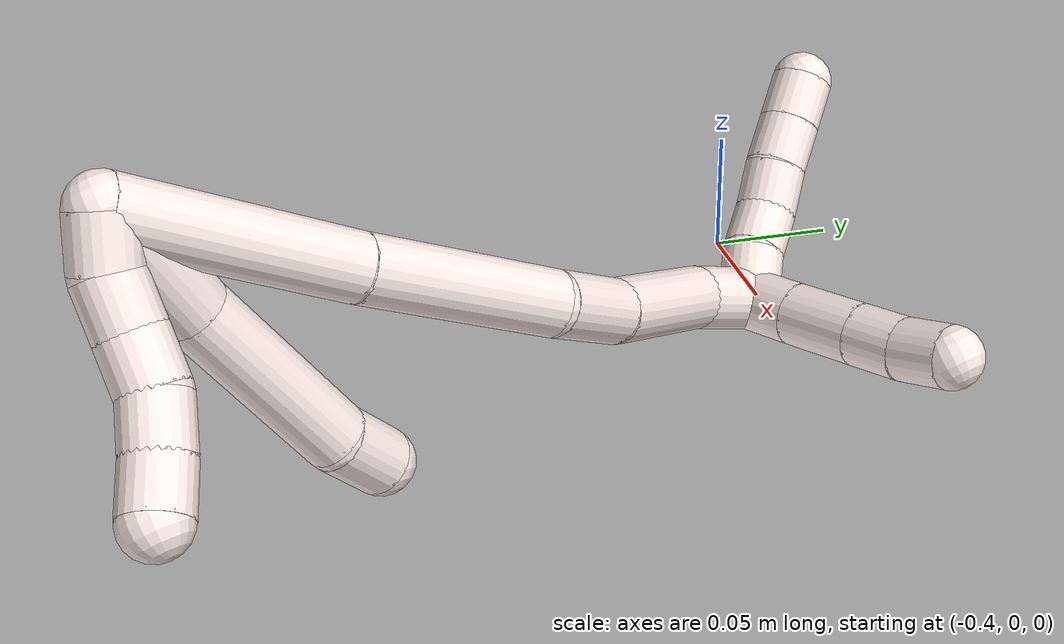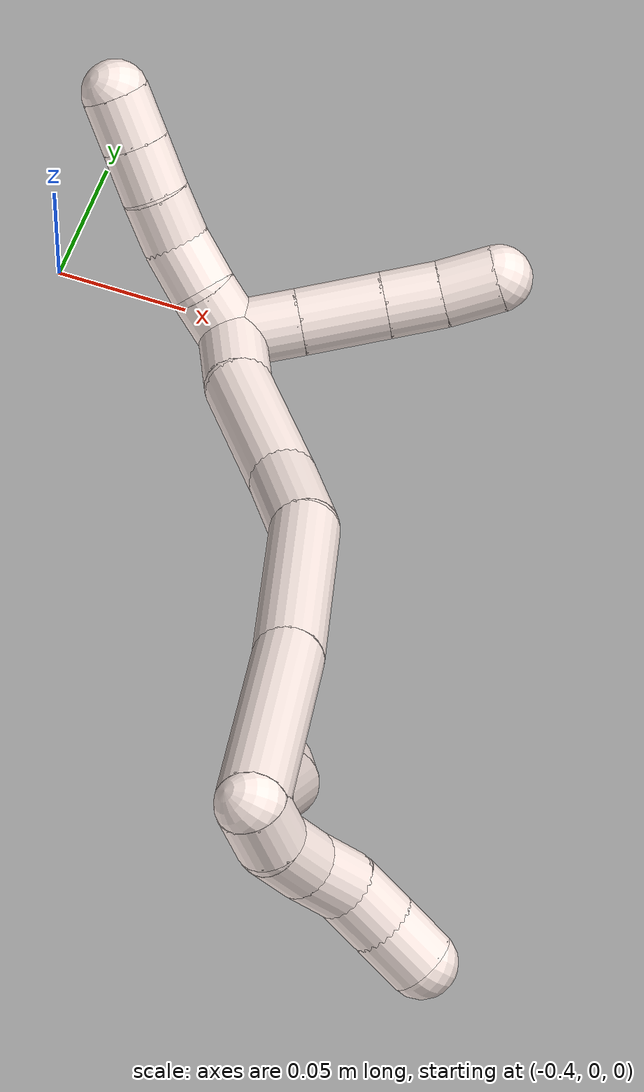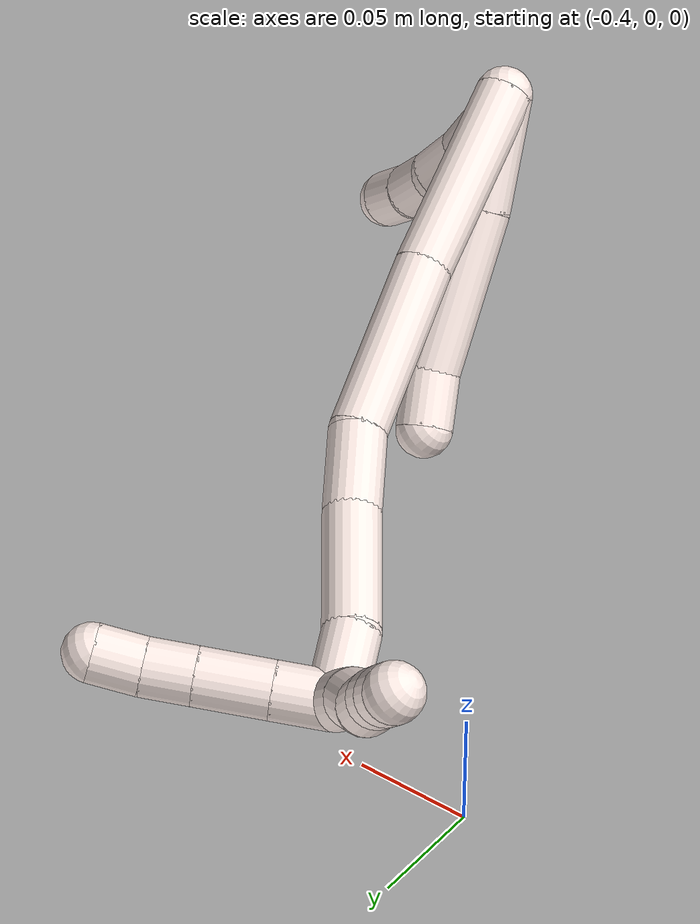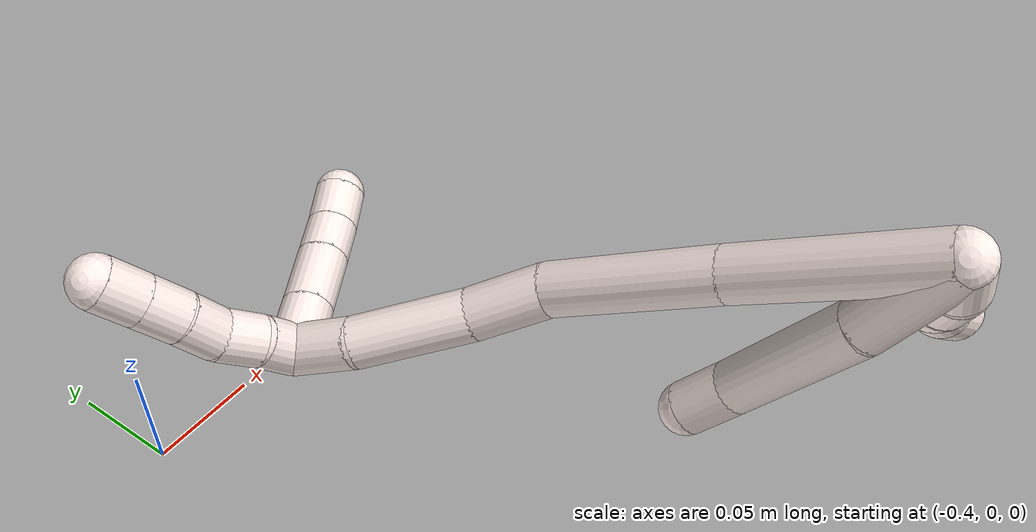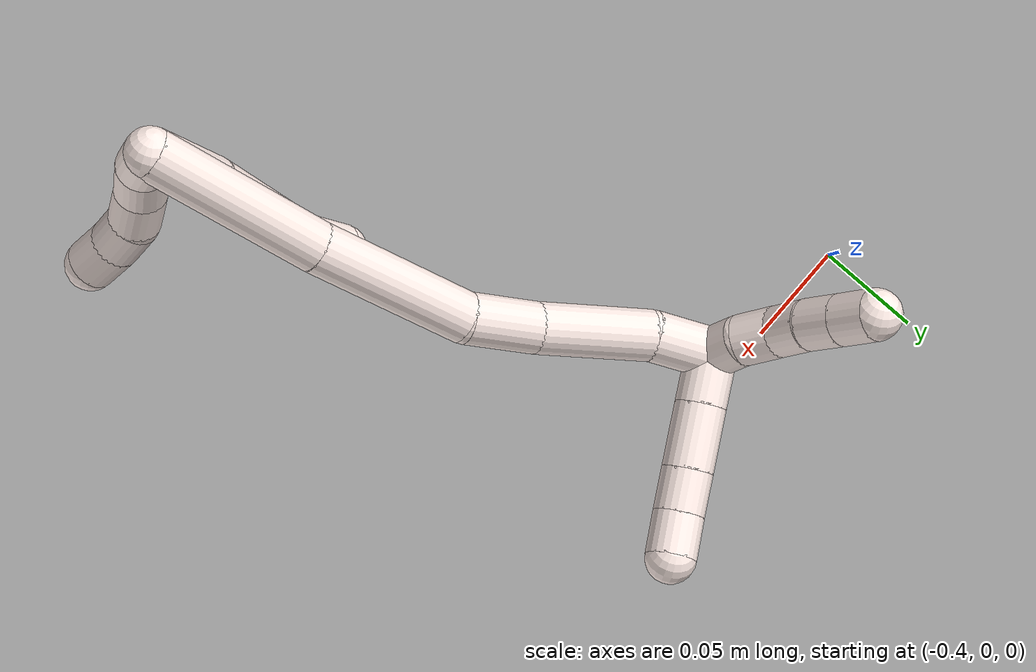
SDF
<sdf version="1.7">
 <world name="default">
  <model name="11">
   <static>0</static>
   <link name="11">
    <collision name="collision-cylinder-e_1_2_8">
     <pose>-0.018063 0.006832 -0.016185 -2.74216 -0.799315 2.24783</pose>
     <geometry><cylinder><radius>0.0125</radius><length>0.050394</length></cylinder></geometry>
     <surface>
      <friction><ode><mu>1.16</mu><mu2>1.16</mu2><slip1>0</slip1><slip2>0</slip2></ode></friction>
      <contact><ode><kp>1e+06</kp><kd>1</kd><max_vel>0</max_vel><min_depth>0.001</min_depth></ode></contact>
     </surface>
    </collision>
    <visual name="visual-cylinder-e_1_2_8">
     <pose>-0.018063 0.006832 -0.016185 -2.74216 -0.799315 2.24783</pose>
     <geometry><cylinder><radius>0.0125</radius><length>0.050394</length></cylinder></geometry>
     <material><ambient>1 0.933333 0.909804 1</ambient></material>
    </visual>
    <collision name="collision-cylinder-e_2_8_9">
     <pose>-0.059787 0.027061 -0.057349 -2.64931 -0.695553 1.9295</pose>
     <geometry><cylinder><radius>0.0125</radius><length>0.073847</length></cylinder></geometry>
     <surface>
      <friction><ode><mu>1.16</mu><mu2>1.16</mu2><slip1>0</slip1><slip2>0</slip2></ode></friction>
      <contact><ode><kp>1e+06</kp><kd>1</kd><max_vel>0</max_vel><min_depth>0.001</min_depth></ode></contact>
     </surface>
    </collision>
    <visual name="visual-cylinder-e_2_8_9">
     <pose>-0.059787 0.027061 -0.057349 -2.64931 -0.695553 1.9295</pose>
     <geometry><cylinder><radius>0.0125</radius><length>0.073847</length></cylinder></geometry>
     <material><ambient>1 0.933333 0.909804 1</ambient></material>
    </visual>
    <collision name="collision-cylinder-e_3_9_6">
     <pose>-0.093194 0.046467 -0.088229 -2.3471 -0.858205 1.65736</pose>
     <geometry><cylinder><radius>0.0125</radius><length>0.025759</length></cylinder></geometry>
     <surface>
      <friction><ode><mu>1.16</mu><mu2>1.16</mu2><slip1>0</slip1><slip2>0</slip2></ode></friction>
      <contact><ode><kp>1e+06</kp><kd>1</kd><max_vel>0</max_vel><min_depth>0.001</min_depth></ode></contact>
     </surface>
    </collision>
    <visual name="visual-cylinder-e_3_9_6">
     <pose>-0.093194 0.046467 -0.088229 -2.3471 -0.858205 1.65736</pose>
     <geometry><cylinder><radius>0.0125</radius><length>0.025759</length></cylinder></geometry>
     <material><ambient>1 0.933333 0.909804 1</ambient></material>
    </visual>
    <collision name="collision-cylinder-e_1_2_10">
     <pose>-0.003152 -0.00326 -0.008913 2.79092 -0.320622 -1.47964</pose>
     <geometry><cylinder><radius>0.0125</radius><length>0.02</length></cylinder></geometry>
     <surface>
      <friction><ode><mu>1.16</mu><mu2>1.16</mu2><slip1>0</slip1><slip2>0</slip2></ode></friction>
      <contact><ode><kp>1e+06</kp><kd>1</kd><max_vel>0</max_vel><min_depth>0.001</min_depth></ode></contact>
     </surface>
    </collision>
    <visual name="visual-cylinder-e_1_2_10">
     <pose>-0.003152 -0.00326 -0.008913 2.79092 -0.320622 -1.47964</pose>
     <geometry><cylinder><radius>0.0125</radius><length>0.02</length></cylinder></geometry>
     <material><ambient>1 0.933333 0.909804 1</ambient></material>
    </visual>
    <collision name="collision-cylinder-e_2_10_11">
     <pose>-0.008414 -0.006801 -0.027596 3.1129 -0.212701 -2.87439</pose>
     <geometry><cylinder><radius>0.0125</radius><length>0.02</length></cylinder></geometry>
     <surface>
      <friction><ode><mu>1.16</mu><mu2>1.16</mu2><slip1>0</slip1><slip2>0</slip2></ode></friction>
      <contact><ode><kp>1e+06</kp><kd>1</kd><max_vel>0</max_vel><min_depth>0.001</min_depth></ode></contact>
     </surface>
    </collision>
    <visual name="visual-cylinder-e_2_10_11">
     <pose>-0.008414 -0.006801 -0.027596 3.1129 -0.212701 -2.87439</pose>
     <geometry><cylinder><radius>0.0125</radius><length>0.02</length></cylinder></geometry>
     <material><ambient>1 0.933333 0.909804 1</ambient></material>
    </visual>
    <collision name="collision-cylinder-e_3_11_12">
     <pose>-0.010851 -0.007339 -0.047358 3.11585 -0.032594 -1.80462</pose>
     <geometry><cylinder><radius>0.0125</radius><length>0.02</length></cylinder></geometry>
     <surface>
      <friction><ode><mu>1.16</mu><mu2>1.16</mu2><slip1>0</slip1><slip2>0</slip2></ode></friction>
      <contact><ode><kp>1e+06</kp><kd>1</kd><max_vel>0</max_vel><min_depth>0.001</min_depth></ode></contact>
     </surface>
    </collision>
    <visual name="visual-cylinder-e_3_11_12">
     <pose>-0.010851 -0.007339 -0.047358 3.11585 -0.032594 -1.80462</pose>
     <geometry><cylinder><radius>0.0125</radius><length>0.02</length></cylinder></geometry>
     <material><ambient>1 0.933333 0.909804 1</ambient></material>
    </visual>
    <collision name="collision-cylinder-e_4_12_13">
     <pose>-0.010423 -0.010852 -0.066774 2.80892 0.075486 0.442467</pose>
     <geometry><cylinder><radius>0.0125</radius><length>0.02</length></cylinder></geometry>
     <surface>
      <friction><ode><mu>1.16</mu><mu2>1.16</mu2><slip1>0</slip1><slip2>0</slip2></ode></friction>
      <contact><ode><kp>1e+06</kp><kd>1</kd><max_vel>0</max_vel><min_depth>0.001</min_depth></ode></contact>
     </surface>
    </collision>
    <visual name="visual-cylinder-e_4_12_13">
     <pose>-0.010423 -0.010852 -0.066774 2.80892 0.075486 0.442467</pose>
     <geometry><cylinder><radius>0.0125</radius><length>0.02</length></cylinder></geometry>
     <material><ambient>1 0.933333 0.909804 1</ambient></material>
    </visual>
    <collision name="collision-cylinder-e_5_13_5">
     <pose>-0.007705 -0.018096 -0.085157 2.72279 0.19766 0.87309</pose>
     <geometry><cylinder><radius>0.0125</radius><length>0.02</length></cylinder></geometry>
     <surface>
      <friction><ode><mu>1.16</mu><mu2>1.16</mu2><slip1>0</slip1><slip2>0</slip2></ode></friction>
      <contact><ode><kp>1e+06</kp><kd>1</kd><max_vel>0</max_vel><min_depth>0.001</min_depth></ode></contact>
     </surface>
    </collision>
    <visual name="visual-cylinder-e_5_13_5">
     <pose>-0.007705 -0.018096 -0.085157 2.72279 0.19766 0.87309</pose>
     <geometry><cylinder><radius>0.0125</radius><length>0.02</length></cylinder></geometry>
     <material><ambient>1 0.933333 0.909804 1</ambient></material>
    </visual>
    <collision name="collision-cylinder-e_1_2_14">
     <pose>-0.022894 0.034118 -0.019372 -2.0872 -0.52821 0.869726</pose>
     <geometry><cylinder><radius>0.0125</radius><length>0.090851</length></cylinder></geometry>
     <surface>
      <friction><ode><mu>1.16</mu><mu2>1.16</mu2><slip1>0</slip1><slip2>0</slip2></ode></friction>
      <contact><ode><kp>1e+06</kp><kd>1</kd><max_vel>0</max_vel><min_depth>0.001</min_depth></ode></contact>
     </surface>
    </collision>
    <visual name="visual-cylinder-e_1_2_14">
     <pose>-0.022894 0.034118 -0.019372 -2.0872 -0.52821 0.869726</pose>
     <geometry><cylinder><radius>0.0125</radius><length>0.090851</length></cylinder></geometry>
     <material><ambient>1 0.933333 0.909804 1</ambient></material>
    </visual>
    <collision name="collision-cylinder-e_2_14_15">
     <pose>-0.067814 0.099132 -0.053968 -2.0286 -0.568963 0.878814</pose>
     <geometry><cylinder><radius>0.0125</radius><length>0.081766</length></cylinder></geometry>
     <surface>
      <friction><ode><mu>1.16</mu><mu2>1.16</mu2><slip1>0</slip1><slip2>0</slip2></ode></friction>
      <contact><ode><kp>1e+06</kp><kd>1</kd><max_vel>0</max_vel><min_depth>0.001</min_depth></ode></contact>
     </surface>
    </collision>
    <visual name="visual-cylinder-e_2_14_15">
     <pose>-0.067814 0.099132 -0.053968 -2.0286 -0.568963 0.878814</pose>
     <geometry><cylinder><radius>0.0125</radius><length>0.081766</length></cylinder></geometry>
     <material><ambient>1 0.933333 0.909804 1</ambient></material>
    </visual>
    <collision name="collision-cylinder-e_3_15_16">
     <pose>-0.103593 0.142104 -0.073061 -1.88094 -0.825901 1.0816</pose>
     <geometry><cylinder><radius>0.0125</radius><length>0.037415</length></cylinder></geometry>
     <surface>
      <friction><ode><mu>1.16</mu><mu2>1.16</mu2><slip1>0</slip1><slip2>0</slip2></ode></friction>
      <contact><ode><kp>1e+06</kp><kd>1</kd><max_vel>0</max_vel><min_depth>0.001</min_depth></ode></contact>
     </surface>
    </collision>
    <visual name="visual-cylinder-e_3_15_16">
     <pose>-0.103593 0.142104 -0.073061 -1.88094 -0.825901 1.0816</pose>
     <geometry><cylinder><radius>0.0125</radius><length>0.037415</length></cylinder></geometry>
     <material><ambient>1 0.933333 0.909804 1</ambient></material>
    </visual>
    <collision name="collision-cylinder-e_4_16_17">
     <pose>-0.137692 0.174435 -0.078277 -1.63712 -0.78657 0.834658</pose>
     <geometry><cylinder><radius>0.0125</radius><length>0.057481</length></cylinder></geometry>
     <surface>
      <friction><ode><mu>1.16</mu><mu2>1.16</mu2><slip1>0</slip1><slip2>0</slip2></ode></friction>
      <contact><ode><kp>1e+06</kp><kd>1</kd><max_vel>0</max_vel><min_depth>0.001</min_depth></ode></contact>
     </surface>
    </collision>
    <visual name="visual-cylinder-e_4_16_17">
     <pose>-0.137692 0.174435 -0.078277 -1.63712 -0.78657 0.834658</pose>
     <geometry><cylinder><radius>0.0125</radius><length>0.057481</length></cylinder></geometry>
     <material><ambient>1 0.933333 0.909804 1</ambient></material>
    </visual>
    <collision name="collision-cylinder-e_5_17_1">
     <pose>-0.167851 0.207163 -0.083081 -1.84128 -0.648617 0.832491</pose>
     <geometry><cylinder><radius>0.0125</radius><length>0.032487</length></cylinder></geometry>
     <surface>
      <friction><ode><mu>1.16</mu><mu2>1.16</mu2><slip1>0</slip1><slip2>0</slip2></ode></friction>
      <contact><ode><kp>1e+06</kp><kd>1</kd><max_vel>0</max_vel><min_depth>0.001</min_depth></ode></contact>
     </surface>
    </collision>
    <visual name="visual-cylinder-e_5_17_1">
     <pose>-0.167851 0.207163 -0.083081 -1.84128 -0.648617 0.832491</pose>
     <geometry><cylinder><radius>0.0125</radius><length>0.032487</length></cylinder></geometry>
     <material><ambient>1 0.933333 0.909804 1</ambient></material>
    </visual>
    <collision name="collision-cylinder-e_1_1_18">
     <pose>-0.17863 0.225046 -0.078184 -0.574457 -0.096832 0.028624</pose>
     <geometry><cylinder><radius>0.0125</radius><length>0.02</length></cylinder></geometry>
     <surface>
      <friction><ode><mu>1.16</mu><mu2>1.16</mu2><slip1>0</slip1><slip2>0</slip2></ode></friction>
      <contact><ode><kp>1e+06</kp><kd>1</kd><max_vel>0</max_vel><min_depth>0.001</min_depth></ode></contact>
     </surface>
    </collision>
    <visual name="visual-cylinder-e_1_1_18">
     <pose>-0.17863 0.225046 -0.078184 -0.574457 -0.096832 0.028624</pose>
     <geometry><cylinder><radius>0.0125</radius><length>0.02</length></cylinder></geometry>
     <material><ambient>1 0.933333 0.909804 1</ambient></material>
    </visual>
    <collision name="collision-cylinder-e_2_18_19">
     <pose>-0.182138 0.237265 -0.062961 -0.781295 -0.25686 0.106263</pose>
     <geometry><cylinder><radius>0.0125</radius><length>0.02</length></cylinder></geometry>
     <surface>
      <friction><ode><mu>1.16</mu><mu2>1.16</mu2><slip1>0</slip1><slip2>0</slip2></ode></friction>
      <contact><ode><kp>1e+06</kp><kd>1</kd><max_vel>0</max_vel><min_depth>0.001</min_depth></ode></contact>
     </surface>
    </collision>
    <visual name="visual-cylinder-e_2_18_19">
     <pose>-0.182138 0.237265 -0.062961 -0.781295 -0.25686 0.106263</pose>
     <geometry><cylinder><radius>0.0125</radius><length>0.02</length></cylinder></geometry>
     <material><ambient>1 0.933333 0.909804 1</ambient></material>
    </visual>
    <collision name="collision-cylinder-e_3_19_20">
     <pose>-0.184206 0.250243 -0.048236 -0.665362 0.04719 -0.016308</pose>
     <geometry><cylinder><radius>0.0125</radius><length>0.02</length></cylinder></geometry>
     <surface>
      <friction><ode><mu>1.16</mu><mu2>1.16</mu2><slip1>0</slip1><slip2>0</slip2></ode></friction>
      <contact><ode><kp>1e+06</kp><kd>1</kd><max_vel>0</max_vel><min_depth>0.001</min_depth></ode></contact>
     </surface>
    </collision>
    <visual name="visual-cylinder-e_3_19_20">
     <pose>-0.184206 0.250243 -0.048236 -0.665362 0.04719 -0.016308</pose>
     <geometry><cylinder><radius>0.0125</radius><length>0.02</length></cylinder></geometry>
     <material><ambient>1 0.933333 0.909804 1</ambient></material>
    </visual>
    <collision name="collision-cylinder-e_4_20_21">
     <pose>-0.183841 0.263268 -0.033101 -0.755856 -0.010596 0.004207</pose>
     <geometry><cylinder><radius>0.0125</radius><length>0.02</length></cylinder></geometry>
     <surface>
      <friction><ode><mu>1.16</mu><mu2>1.16</mu2><slip1>0</slip1><slip2>0</slip2></ode></friction>
      <contact><ode><kp>1e+06</kp><kd>1</kd><max_vel>0</max_vel><min_depth>0.001</min_depth></ode></contact>
     </surface>
    </collision>
    <visual name="visual-cylinder-e_4_20_21">
     <pose>-0.183841 0.263268 -0.033101 -0.755856 -0.010596 0.004207</pose>
     <geometry><cylinder><radius>0.0125</radius><length>0.02</length></cylinder></geometry>
     <material><ambient>1 0.933333 0.909804 1</ambient></material>
    </visual>
    <collision name="collision-cylinder-e_5_21_4">
     <pose>-0.184092 0.276952 -0.018518 -0.75128 -0.014539 0.005734</pose>
     <geometry><cylinder><radius>0.0125</radius><length>0.02</length></cylinder></geometry>
     <surface>
      <friction><ode><mu>1.16</mu><mu2>1.16</mu2><slip1>0</slip1><slip2>0</slip2></ode></friction>
      <contact><ode><kp>1e+06</kp><kd>1</kd><max_vel>0</max_vel><min_depth>0.001</min_depth></ode></contact>
     </surface>
    </collision>
    <visual name="visual-cylinder-e_5_21_4">
     <pose>-0.184092 0.276952 -0.018518 -0.75128 -0.014539 0.005734</pose>
     <geometry><cylinder><radius>0.0125</radius><length>0.02</length></cylinder></geometry>
     <material><ambient>1 0.933333 0.909804 1</ambient></material>
    </visual>
    <collision name="collision-cylinder-e_1_1_22">
     <pose>-0.169019 0.224736 -0.094412 -2.56691 0.744694 -1.84611</pose>
     <geometry><cylinder><radius>0.0125</radius><length>0.02551</length></cylinder></geometry>
     <surface>
      <friction><ode><mu>1.16</mu><mu2>1.16</mu2><slip1>0</slip1><slip2>0</slip2></ode></friction>
      <contact><ode><kp>1e+06</kp><kd>1</kd><max_vel>0</max_vel><min_depth>0.001</min_depth></ode></contact>
     </surface>
    </collision>
    <visual name="visual-cylinder-e_1_1_22">
     <pose>-0.169019 0.224736 -0.094412 -2.56691 0.744694 -1.84611</pose>
     <geometry><cylinder><radius>0.0125</radius><length>0.02551</length></cylinder></geometry>
     <material><ambient>1 0.933333 0.909804 1</ambient></material>
    </visual>
    <collision name="collision-cylinder-e_2_22_23">
     <pose>-0.14959 0.236252 -0.111945 -2.55517 0.749004 -1.8316</pose>
     <geometry><cylinder><radius>0.0125</radius><length>0.031676</length></cylinder></geometry>
     <surface>
      <friction><ode><mu>1.16</mu><mu2>1.16</mu2><slip1>0</slip1><slip2>0</slip2></ode></friction>
      <contact><ode><kp>1e+06</kp><kd>1</kd><max_vel>0</max_vel><min_depth>0.001</min_depth></ode></contact>
     </surface>
    </collision>
    <visual name="visual-cylinder-e_2_22_23">
     <pose>-0.14959 0.236252 -0.111945 -2.55517 0.749004 -1.8316</pose>
     <geometry><cylinder><radius>0.0125</radius><length>0.031676</length></cylinder></geometry>
     <material><ambient>1 0.933333 0.909804 1</ambient></material>
    </visual>
    <collision name="collision-cylinder-e_3_23_24">
     <pose>-0.131527 0.247015 -0.128131 -2.55422 0.748404 -1.82908</pose>
     <geometry><cylinder><radius>0.0125</radius><length>0.021393</length></cylinder></geometry>
     <surface>
      <friction><ode><mu>1.16</mu><mu2>1.16</mu2><slip1>0</slip1><slip2>0</slip2></ode></friction>
      <contact><ode><kp>1e+06</kp><kd>1</kd><max_vel>0</max_vel><min_depth>0.001</min_depth></ode></contact>
     </surface>
    </collision>
    <visual name="visual-cylinder-e_3_23_24">
     <pose>-0.131527 0.247015 -0.128131 -2.55422 0.748404 -1.82908</pose>
     <geometry><cylinder><radius>0.0125</radius><length>0.021393</length></cylinder></geometry>
     <material><ambient>1 0.933333 0.909804 1</ambient></material>
    </visual>
    <collision name="collision-cylinder-e_4_24_3">
     <pose>-0.116297 0.256078 -0.140061 -2.42385 0.836596 -1.73978</pose>
     <geometry><cylinder><radius>0.0125</radius><length>0.021421</length></cylinder></geometry>
     <surface>
      <friction><ode><mu>1.16</mu><mu2>1.16</mu2><slip1>0</slip1><slip2>0</slip2></ode></friction>
      <contact><ode><kp>1e+06</kp><kd>1</kd><max_vel>0</max_vel><min_depth>0.001</min_depth></ode></contact>
     </surface>
    </collision>
    <visual name="visual-cylinder-e_4_24_3">
     <pose>-0.116297 0.256078 -0.140061 -2.42385 0.836596 -1.73978</pose>
     <geometry><cylinder><radius>0.0125</radius><length>0.021421</length></cylinder></geometry>
     <material><ambient>1 0.933333 0.909804 1</ambient></material>
    </visual>
    <collision name="collision-sphere-3">
     <pose>-0.108346 0.260798 -0.145467 0 -0 0</pose>
     <geometry><sphere><radius>0.0125</radius></sphere></geometry>
     <surface>
      <friction><ode><mu>1.16</mu><mu2>1.16</mu2><slip1>0</slip1><slip2>0</slip2></ode></friction>
      <contact><ode><kp>1e+06</kp><kd>1</kd><max_vel>0</max_vel><min_depth>0.001</min_depth></ode></contact>
     </surface>
    </collision>
    <visual name="visual-sphere-3">
     <pose>-0.108346 0.260798 -0.145467 0 -0 0</pose>
     <geometry><sphere><radius>0.0125</radius></sphere></geometry>
     <material><ambient>1 0.933333 0.909804 1</ambient></material>
    </visual>
    <collision name="collision-sphere-24">
     <pose>-0.124248 0.251359 -0.134656 0 -0 0</pose>
     <geometry><sphere><radius>0.0125</radius></sphere></geometry>
     <surface>
      <friction><ode><mu>1.16</mu><mu2>1.16</mu2><slip1>0</slip1><slip2>0</slip2></ode></friction>
      <contact><ode><kp>1e+06</kp><kd>1</kd><max_vel>0</max_vel><min_depth>0.001</min_depth></ode></contact>
     </surface>
    </collision>
    <visual name="visual-sphere-24">
     <pose>-0.124248 0.251359 -0.134656 0 -0 0</pose>
     <geometry><sphere><radius>0.0125</radius></sphere></geometry>
     <material><ambient>1 0.933333 0.909804 1</ambient></material>
    </visual>
    <collision name="collision-sphere-23">
     <pose>-0.138806 0.242671 -0.121607 0 -0 0</pose>
     <geometry><sphere><radius>0.0125</radius></sphere></geometry>
     <surface>
      <friction><ode><mu>1.16</mu><mu2>1.16</mu2><slip1>0</slip1><slip2>0</slip2></ode></friction>
      <contact><ode><kp>1e+06</kp><kd>1</kd><max_vel>0</max_vel><min_depth>0.001</min_depth></ode></contact>
     </surface>
    </collision>
    <visual name="visual-sphere-23">
     <pose>-0.138806 0.242671 -0.121607 0 -0 0</pose>
     <geometry><sphere><radius>0.0125</radius></sphere></geometry>
     <material><ambient>1 0.933333 0.909804 1</ambient></material>
    </visual>
    <collision name="collision-sphere-22">
     <pose>-0.160374 0.229834 -0.102284 0 -0 0</pose>
     <geometry><sphere><radius>0.0125</radius></sphere></geometry>
     <surface>
      <friction><ode><mu>1.16</mu><mu2>1.16</mu2><slip1>0</slip1><slip2>0</slip2></ode></friction>
      <contact><ode><kp>1e+06</kp><kd>1</kd><max_vel>0</max_vel><min_depth>0.001</min_depth></ode></contact>
     </surface>
    </collision>
    <visual name="visual-sphere-22">
     <pose>-0.160374 0.229834 -0.102284 0 -0 0</pose>
     <geometry><sphere><radius>0.0125</radius></sphere></geometry>
     <material><ambient>1 0.933333 0.909804 1</ambient></material>
    </visual>
    <collision name="collision-sphere-4">
     <pose>-0.184237 0.283777 -0.01121 0 -0 0</pose>
     <geometry><sphere><radius>0.0125</radius></sphere></geometry>
     <surface>
      <friction><ode><mu>1.16</mu><mu2>1.16</mu2><slip1>0</slip1><slip2>0</slip2></ode></friction>
      <contact><ode><kp>1e+06</kp><kd>1</kd><max_vel>0</max_vel><min_depth>0.001</min_depth></ode></contact>
     </surface>
    </collision>
    <visual name="visual-sphere-4">
     <pose>-0.184237 0.283777 -0.01121 0 -0 0</pose>
     <geometry><sphere><radius>0.0125</radius></sphere></geometry>
     <material><ambient>1 0.933333 0.909804 1</ambient></material>
    </visual>
    <collision name="collision-sphere-21">
     <pose>-0.183947 0.270127 -0.025825 0 -0 0</pose>
     <geometry><sphere><radius>0.0125</radius></sphere></geometry>
     <surface>
      <friction><ode><mu>1.16</mu><mu2>1.16</mu2><slip1>0</slip1><slip2>0</slip2></ode></friction>
      <contact><ode><kp>1e+06</kp><kd>1</kd><max_vel>0</max_vel><min_depth>0.001</min_depth></ode></contact>
     </surface>
    </collision>
    <visual name="visual-sphere-21">
     <pose>-0.183947 0.270127 -0.025825 0 -0 0</pose>
     <geometry><sphere><radius>0.0125</radius></sphere></geometry>
     <material><ambient>1 0.933333 0.909804 1</ambient></material>
    </visual>
    <collision name="collision-sphere-20">
     <pose>-0.183735 0.256409 -0.040378 0 -0 0</pose>
     <geometry><sphere><radius>0.0125</radius></sphere></geometry>
     <surface>
      <friction><ode><mu>1.16</mu><mu2>1.16</mu2><slip1>0</slip1><slip2>0</slip2></ode></friction>
      <contact><ode><kp>1e+06</kp><kd>1</kd><max_vel>0</max_vel><min_depth>0.001</min_depth></ode></contact>
     </surface>
    </collision>
    <visual name="visual-sphere-20">
     <pose>-0.183735 0.256409 -0.040378 0 -0 0</pose>
     <geometry><sphere><radius>0.0125</radius></sphere></geometry>
     <material><ambient>1 0.933333 0.909804 1</ambient></material>
    </visual>
    <collision name="collision-sphere-11">
     <pose>-0.010525 -0.007081 -0.037367 0 -0 0</pose>
     <geometry><sphere><radius>0.0125</radius></sphere></geometry>
     <surface>
      <friction><ode><mu>1.16</mu><mu2>1.16</mu2><slip1>0</slip1><slip2>0</slip2></ode></friction>
      <contact><ode><kp>1e+06</kp><kd>1</kd><max_vel>0</max_vel><min_depth>0.001</min_depth></ode></contact>
     </surface>
    </collision>
    <visual name="visual-sphere-11">
     <pose>-0.010525 -0.007081 -0.037367 0 -0 0</pose>
     <geometry><sphere><radius>0.0125</radius></sphere></geometry>
     <material><ambient>1 0.933333 0.909804 1</ambient></material>
    </visual>
    <collision name="collision-sphere-10">
     <pose>-0.006303 -0.00652 -0.017826 0 -0 0</pose>
     <geometry><sphere><radius>0.0125</radius></sphere></geometry>
     <surface>
      <friction><ode><mu>1.16</mu><mu2>1.16</mu2><slip1>0</slip1><slip2>0</slip2></ode></friction>
      <contact><ode><kp>1e+06</kp><kd>1</kd><max_vel>0</max_vel><min_depth>0.001</min_depth></ode></contact>
     </surface>
    </collision>
    <visual name="visual-sphere-10">
     <pose>-0.006303 -0.00652 -0.017826 0 -0 0</pose>
     <geometry><sphere><radius>0.0125</radius></sphere></geometry>
     <material><ambient>1 0.933333 0.909804 1</ambient></material>
    </visual>
    <collision name="collision-sphere-6">
     <pose>-0.102939 0.052475 -0.094129 0 -0 0</pose>
     <geometry><sphere><radius>0.0125</radius></sphere></geometry>
     <surface>
      <friction><ode><mu>1.16</mu><mu2>1.16</mu2><slip1>0</slip1><slip2>0</slip2></ode></friction>
      <contact><ode><kp>1e+06</kp><kd>1</kd><max_vel>0</max_vel><min_depth>0.001</min_depth></ode></contact>
     </surface>
    </collision>
    <visual name="visual-sphere-6">
     <pose>-0.102939 0.052475 -0.094129 0 -0 0</pose>
     <geometry><sphere><radius>0.0125</radius></sphere></geometry>
     <material><ambient>1 0.933333 0.909804 1</ambient></material>
    </visual>
    <collision name="collision-sphere-9">
     <pose>-0.083448 0.040459 -0.082329 0 -0 0</pose>
     <geometry><sphere><radius>0.0125</radius></sphere></geometry>
     <surface>
      <friction><ode><mu>1.16</mu><mu2>1.16</mu2><slip1>0</slip1><slip2>0</slip2></ode></friction>
      <contact><ode><kp>1e+06</kp><kd>1</kd><max_vel>0</max_vel><min_depth>0.001</min_depth></ode></contact>
     </surface>
    </collision>
    <visual name="visual-sphere-9">
     <pose>-0.083448 0.040459 -0.082329 0 -0 0</pose>
     <geometry><sphere><radius>0.0125</radius></sphere></geometry>
     <material><ambient>1 0.933333 0.909804 1</ambient></material>
    </visual>
    <collision name="collision-sphere-2">
     <geometry><sphere><radius>0.0125</radius></sphere></geometry>
     <surface>
      <friction><ode><mu>1.16</mu><mu2>1.16</mu2><slip1>0</slip1><slip2>0</slip2></ode></friction>
      <contact><ode><kp>1e+06</kp><kd>1</kd><max_vel>0</max_vel><min_depth>0.001</min_depth></ode></contact>
     </surface>
    </collision>
    <visual name="visual-sphere-2">
     <geometry><sphere><radius>0.0125</radius></sphere></geometry>
     <material><ambient>1 0.933333 0.909804 1</ambient></material>
    </visual>
    <collision name="collision-sphere-19">
     <pose>-0.184678 0.244076 -0.056094 0 -0 0</pose>
     <geometry><sphere><radius>0.0125</radius></sphere></geometry>
     <surface>
      <friction><ode><mu>1.16</mu><mu2>1.16</mu2><slip1>0</slip1><slip2>0</slip2></ode></friction>
      <contact><ode><kp>1e+06</kp><kd>1</kd><max_vel>0</max_vel><min_depth>0.001</min_depth></ode></contact>
     </surface>
    </collision>
    <visual name="visual-sphere-19">
     <pose>-0.184678 0.244076 -0.056094 0 -0 0</pose>
     <geometry><sphere><radius>0.0125</radius></sphere></geometry>
     <material><ambient>1 0.933333 0.909804 1</ambient></material>
    </visual>
    <collision name="collision-sphere-8">
     <pose>-0.036127 0.013664 -0.032369 0 -0 0</pose>
     <geometry><sphere><radius>0.0125</radius></sphere></geometry>
     <surface>
      <friction><ode><mu>1.16</mu><mu2>1.16</mu2><slip1>0</slip1><slip2>0</slip2></ode></friction>
      <contact><ode><kp>1e+06</kp><kd>1</kd><max_vel>0</max_vel><min_depth>0.001</min_depth></ode></contact>
     </surface>
    </collision>
    <visual name="visual-sphere-8">
     <pose>-0.036127 0.013664 -0.032369 0 -0 0</pose>
     <geometry><sphere><radius>0.0125</radius></sphere></geometry>
     <material><ambient>1 0.933333 0.909804 1</ambient></material>
    </visual>
    <collision name="collision-sphere-12">
     <pose>-0.011177 -0.007596 -0.05735 0 -0 0</pose>
     <geometry><sphere><radius>0.0125</radius></sphere></geometry>
     <surface>
      <friction><ode><mu>1.16</mu><mu2>1.16</mu2><slip1>0</slip1><slip2>0</slip2></ode></friction>
      <contact><ode><kp>1e+06</kp><kd>1</kd><max_vel>0</max_vel><min_depth>0.001</min_depth></ode></contact>
     </surface>
    </collision>
    <visual name="visual-sphere-12">
     <pose>-0.011177 -0.007596 -0.05735 0 -0 0</pose>
     <geometry><sphere><radius>0.0125</radius></sphere></geometry>
     <material><ambient>1 0.933333 0.909804 1</ambient></material>
    </visual>
    <collision name="collision-sphere-13">
     <pose>-0.009669 -0.014109 -0.076199 0 -0 0</pose>
     <geometry><sphere><radius>0.0125</radius></sphere></geometry>
     <surface>
      <friction><ode><mu>1.16</mu><mu2>1.16</mu2><slip1>0</slip1><slip2>0</slip2></ode></friction>
      <contact><ode><kp>1e+06</kp><kd>1</kd><max_vel>0</max_vel><min_depth>0.001</min_depth></ode></contact>
     </surface>
    </collision>
    <visual name="visual-sphere-13">
     <pose>-0.009669 -0.014109 -0.076199 0 -0 0</pose>
     <geometry><sphere><radius>0.0125</radius></sphere></geometry>
     <material><ambient>1 0.933333 0.909804 1</ambient></material>
    </visual>
    <collision name="collision-sphere-5">
     <pose>-0.005741 -0.022084 -0.094115 0 -0 0</pose>
     <geometry><sphere><radius>0.0125</radius></sphere></geometry>
     <surface>
      <friction><ode><mu>1.16</mu><mu2>1.16</mu2><slip1>0</slip1><slip2>0</slip2></ode></friction>
      <contact><ode><kp>1e+06</kp><kd>1</kd><max_vel>0</max_vel><min_depth>0.001</min_depth></ode></contact>
     </surface>
    </collision>
    <visual name="visual-sphere-5">
     <pose>-0.005741 -0.022084 -0.094115 0 -0 0</pose>
     <geometry><sphere><radius>0.0125</radius></sphere></geometry>
     <material><ambient>1 0.933333 0.909804 1</ambient></material>
    </visual>
    <collision name="collision-sphere-14">
     <pose>-0.045788 0.068237 -0.038745 0 -0 0</pose>
     <geometry><sphere><radius>0.0125</radius></sphere></geometry>
     <surface>
      <friction><ode><mu>1.16</mu><mu2>1.16</mu2><slip1>0</slip1><slip2>0</slip2></ode></friction>
      <contact><ode><kp>1e+06</kp><kd>1</kd><max_vel>0</max_vel><min_depth>0.001</min_depth></ode></contact>
     </surface>
    </collision>
    <visual name="visual-sphere-14">
     <pose>-0.045788 0.068237 -0.038745 0 -0 0</pose>
     <geometry><sphere><radius>0.0125</radius></sphere></geometry>
     <material><ambient>1 0.933333 0.909804 1</ambient></material>
    </visual>
    <collision name="collision-sphere-15">
     <pose>-0.08984 0.130028 -0.06919 0 -0 0</pose>
     <geometry><sphere><radius>0.0125</radius></sphere></geometry>
     <surface>
      <friction><ode><mu>1.16</mu><mu2>1.16</mu2><slip1>0</slip1><slip2>0</slip2></ode></friction>
      <contact><ode><kp>1e+06</kp><kd>1</kd><max_vel>0</max_vel><min_depth>0.001</min_depth></ode></contact>
     </surface>
    </collision>
    <visual name="visual-sphere-15">
     <pose>-0.08984 0.130028 -0.06919 0 -0 0</pose>
     <geometry><sphere><radius>0.0125</radius></sphere></geometry>
     <material><ambient>1 0.933333 0.909804 1</ambient></material>
    </visual>
    <collision name="collision-sphere-16">
     <pose>-0.117346 0.154181 -0.076931 0 -0 0</pose>
     <geometry><sphere><radius>0.0125</radius></sphere></geometry>
     <surface>
      <friction><ode><mu>1.16</mu><mu2>1.16</mu2><slip1>0</slip1><slip2>0</slip2></ode></friction>
      <contact><ode><kp>1e+06</kp><kd>1</kd><max_vel>0</max_vel><min_depth>0.001</min_depth></ode></contact>
     </surface>
    </collision>
    <visual name="visual-sphere-16">
     <pose>-0.117346 0.154181 -0.076931 0 -0 0</pose>
     <geometry><sphere><radius>0.0125</radius></sphere></geometry>
     <material><ambient>1 0.933333 0.909804 1</ambient></material>
    </visual>
    <collision name="collision-sphere-17">
     <pose>-0.158039 0.194689 -0.079622 0 -0 0</pose>
     <geometry><sphere><radius>0.0125</radius></sphere></geometry>
     <surface>
      <friction><ode><mu>1.16</mu><mu2>1.16</mu2><slip1>0</slip1><slip2>0</slip2></ode></friction>
      <contact><ode><kp>1e+06</kp><kd>1</kd><max_vel>0</max_vel><min_depth>0.001</min_depth></ode></contact>
     </surface>
    </collision>
    <visual name="visual-sphere-17">
     <pose>-0.158039 0.194689 -0.079622 0 -0 0</pose>
     <geometry><sphere><radius>0.0125</radius></sphere></geometry>
     <material><ambient>1 0.933333 0.909804 1</ambient></material>
    </visual>
    <collision name="collision-sphere-1">
     <pose>-0.177664 0.219638 -0.08654 0 -0 0</pose>
     <geometry><sphere><radius>0.0125</radius></sphere></geometry>
     <surface>
      <friction><ode><mu>1.16</mu><mu2>1.16</mu2><slip1>0</slip1><slip2>0</slip2></ode></friction>
      <contact><ode><kp>1e+06</kp><kd>1</kd><max_vel>0</max_vel><min_depth>0.001</min_depth></ode></contact>
     </surface>
    </collision>
    <visual name="visual-sphere-1">
     <pose>-0.177664 0.219638 -0.08654 0 -0 0</pose>
     <geometry><sphere><radius>0.0125</radius></sphere></geometry>
     <material><ambient>1 0.933333 0.909804 1</ambient></material>
    </visual>
    <collision name="collision-sphere-18">
     <pose>-0.179597 0.230454 -0.069828 0 -0 0</pose>
     <geometry><sphere><radius>0.0125</radius></sphere></geometry>
     <surface>
      <friction><ode><mu>1.16</mu><mu2>1.16</mu2><slip1>0</slip1><slip2>0</slip2></ode></friction>
      <contact><ode><kp>1e+06</kp><kd>1</kd><max_vel>0</max_vel><min_depth>0.001</min_depth></ode></contact>
     </surface>
    </collision>
    <visual name="visual-sphere-18">
     <pose>-0.179597 0.230454 -0.069828 0 -0 0</pose>
     <geometry><sphere><radius>0.0125</radius></sphere></geometry>
     <material><ambient>1 0.933333 0.909804 1</ambient></material>
    </visual>
    <inertial>
     <pose>-0.088025 0.113245 -0.059546 0 -0 0</pose>
     <mass>0.75</mass>
     <inertia>
      <ixx>0.000166</ixx>
      <ixy>0</ixy>
      <ixz>0</ixz>
      <iyy>0.000207</iyy>
      <iyz>0</iyz>
      <izz>-4.3e-05</izz>
     </inertia>
    </inertial>
   </link>
   <pose>-0.226981 -0.26373 0.13163 0.350737 -0.702266 -0.130438</pose>
  </model>
 </world>
</sdf>
